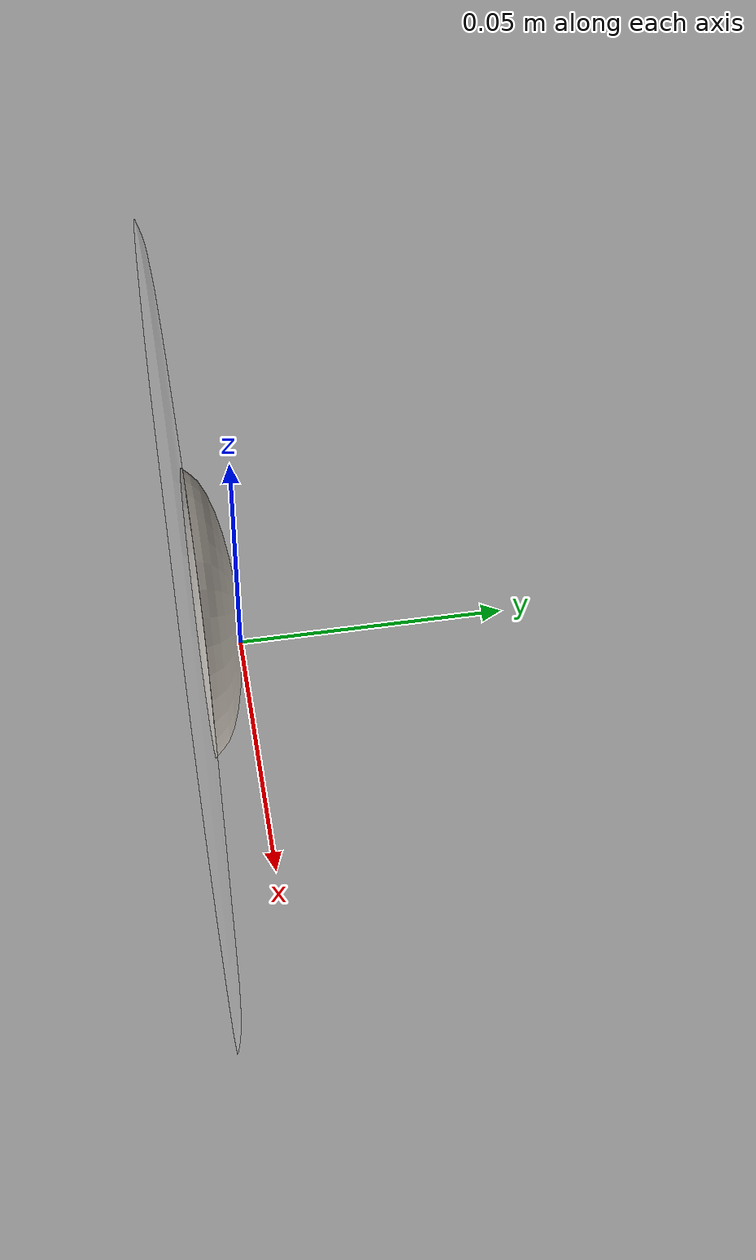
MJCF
<mujoco model="Egg_Cracked_18">
  <compiler autolimits="true" boundmass="0.01" angle="radian"/>
  <default>
    <default class="/">
      <default class="__VISUAL_MJT__">
        <geom contype="0" conaffinity="0" group="0"/>
      </default>
      <default class="__STRUCTURAL_MJT__">
        <geom contype="8" conaffinity="15" group="4" friction="0.90000000000000002 0.90000000000000002 0.001" solref="0.025000000000000001 1" solimp="0.998 0.998 0.001"/>
      </default>
      <default class="__DYNAMIC_MJT__">
        <geom contype="1" conaffinity="15" group="4" friction="0.90000000000000002 0.90000000000000002 0.001" solref="0.025000000000000001 1" solimp="0.998 0.998 0.001"/>
      </default>
    </default>
  </default>
  <asset>
    <texture name="Fried_Egg_White_Uncooked_Mat" type="2d" file="Fried_Egg_AlbedoTransparency.png"/>
    <material name="material_Fried_Egg_White_Uncooked_Mat" class="/" texture="Fried_Egg_White_Uncooked_Mat" specular="0.5" shininess="0.5" rgba="1 1 1 0.5"/>
    <texture name="Fried_Egg_Yolk_Mat" type="2d" file="Fried_Egg_AlbedoTransparency.png"/>
    <material name="material_Fried_Egg_Yolk_Mat" class="/" texture="Fried_Egg_Yolk_Mat" specular="0.5" shininess="0.5" rgba="1 1 1 1"/>
    <mesh name="Egg_Cracked_18_fried_egg_17_0" class="/" file="Egg_Cracked_18_fried_egg_17/Egg_Cracked_18_fried_egg_17_0.obj" scale="1 1 1"/>
    <mesh name="Egg_Cracked_18_fried_egg_17_1" class="/" file="Egg_Cracked_18_fried_egg_17/Egg_Cracked_18_fried_egg_17_1.obj" scale="1 1 1"/>
  </asset>
  <worldbody>
    <body name="Egg_Cracked_18">
      <joint name="Egg_Cracked_18_free" class="/" type="free" pos="0 0 0" axis="0 0 1" stiffness="0" range="0 0" armature="0" damping="0.10000000000000001" frictionloss="0"/>
      <body name="Egg_Cracked_18_fried_egg_17" pos="-0.0061900000000000002 -0.01023 0.00032000000000000003" quat="1 0 0 0">
        <geom name="Egg_Cracked_18_fried_egg_17_0" class="__VISUAL_MJT__" type="mesh" material="material_Fried_Egg_White_Uncooked_Mat" shellinertia="false" mesh="Egg_Cracked_18_fried_egg_17_0"/>
        <geom name="Egg_Cracked_18_fried_egg_17_1" class="__VISUAL_MJT__" type="mesh" material="material_Fried_Egg_Yolk_Mat" shellinertia="false" mesh="Egg_Cracked_18_fried_egg_17_1"/>
        <geom name="Egg_Cracked_18_PrimitiveCollider_0" class="__DYNAMIC_MJT__" type="box" size="0.084331460297107697 0.010231256484985352 0.07146744430065155" rgba="0 1 0 1" pos="-0.0061903521418571472 0.010231256484985352 -0.00031791627407073975" quat="1 0 0 0"/>
      </body>
    </body>
  </worldbody>
</mujoco>
